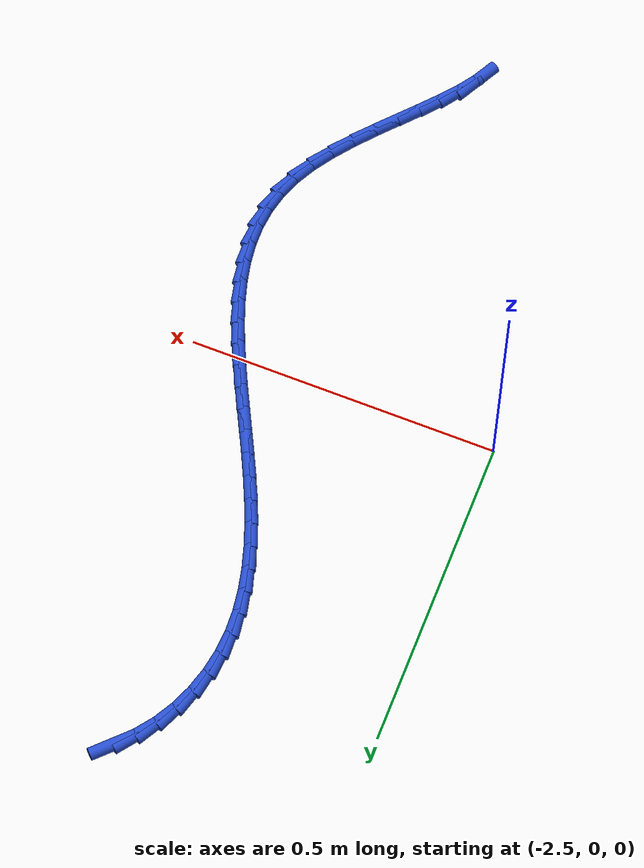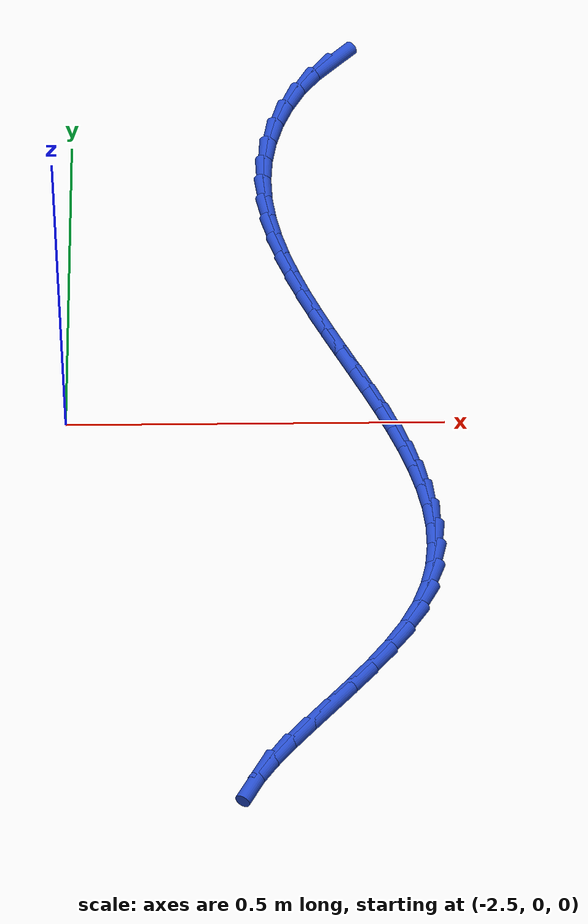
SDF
<sdf version="1.6">
 <world name="default">
  <model name="ground_plane">
   <static>1</static>
   <link name="link">
    <collision name="collision">
     <geometry><plane><normal>0 0 1</normal><size>100 100</size></plane></geometry>
     <surface><friction><ode><mu>100</mu><mu2>50</mu2></ode></friction></surface>
    </collision>
    <visual name="visual">
     <cast_shadows>0</cast_shadows>
     <geometry><plane><normal>0 0 1</normal><size>100 100</size></plane></geometry>
     <material>
      <script><uri>file://media/materials/scripts/gazebo.material</uri><name>Gazebo/WhiteGlow</name></script>
     </material>
    </visual>
   </link>
  </model>
  <model name="line">
   <link name="link_94">
    <pose>-2.1380356782683396 0.6542722284471584 0.01 0 1.57 0.7893928742878731</pose>
    <collision name="collision">
     <geometry><cylinder><radius>0.01</radius><length>0.08</length></cylinder></geometry>
    </collision>
    <visual name="visual">
     <material>
      <script><name>Gazebo/Blue</name><uri>file://media/materials/scripts/gazebo.material</uri></script>
     </material>
     <geometry><cylinder><radius>0.01</radius><length>0.08</length></cylinder></geometry>
    </visual>
   </link>
   <link name="link_95">
    <pose>-2.1633654362984296 0.6287392875590041 0.01 0 1.57 0.9290859651250767</pose>
    <collision name="collision">
     <geometry><cylinder><radius>0.01</radius><length>0.08</length></cylinder></geometry>
    </collision>
    <visual name="visual">
     <material>
      <script><name>Gazebo/Blue</name><uri>file://media/materials/scripts/gazebo.material</uri></script>
     </material>
     <geometry><cylinder><radius>0.01</radius><length>0.08</length></cylinder></geometry>
    </visual>
   </link>
   <link name="link_96">
    <pose>-2.185012794638447 0.5997682048682689 0.01 0 1.57 1.057145029015441</pose>
    <collision name="collision">
     <geometry><cylinder><radius>0.01</radius><length>0.08</length></cylinder></geometry>
    </collision>
    <visual name="visual">
     <material>
      <script><name>Gazebo/Blue</name><uri>file://media/materials/scripts/gazebo.material</uri></script>
     </material>
     <geometry><cylinder><radius>0.01</radius><length>0.08</length></cylinder></geometry>
    </visual>
   </link>
   <link name="link_97">
    <pose>-2.202900033851906 0.5680623639814033 0.01 0 1.57 1.176201525417892</pose>
    <collision name="collision">
     <geometry><cylinder><radius>0.01</radius><length>0.08</length></cylinder></geometry>
    </collision>
    <visual name="visual">
     <material>
      <script><name>Gazebo/Blue</name><uri>file://media/materials/scripts/gazebo.material</uri></script>
     </material>
     <geometry><cylinder><radius>0.01</radius><length>0.08</length></cylinder></geometry>
    </visual>
   </link>
   <link name="link_98">
    <pose>-2.2169494345023217 0.5343251485048576 0.01 0 1.57 1.2894616285602325</pose>
    <collision name="collision">
     <geometry><cylinder><radius>0.01</radius><length>0.08</length></cylinder></geometry>
    </collision>
    <visual name="visual">
     <material>
      <script><name>Gazebo/Blue</name><uri>file://media/materials/scripts/gazebo.material</uri></script>
     </material>
     <geometry><cylinder><radius>0.01</radius><length>0.08</length></cylinder></geometry>
    </visual>
   </link>
   <link name="link_99">
    <pose>-2.227083277153211 0.49925994204508195 0.01 0 1.57 1.400410815365416</pose>
    <collision name="collision">
     <geometry><cylinder><radius>0.01</radius><length>0.08</length></cylinder></geometry>
    </collision>
    <visual name="visual">
     <material>
      <script><name>Gazebo/Blue</name><uri>file://media/materials/scripts/gazebo.material</uri></script>
     </material>
     <geometry><cylinder><radius>0.01</radius><length>0.08</length></cylinder></geometry>
    </visual>
   </link>
   <link name="link_100">
    <pose>-2.233223842368088 0.4635701282085273 0.01 0 1.57 1.5114984601576926</pose>
    <collision name="collision">
     <geometry><cylinder><radius>0.01</radius><length>0.08</length></cylinder></geometry>
    </collision>
    <visual name="visual">
     <material>
      <script><name>Gazebo/Blue</name><uri>file://media/materials/scripts/gazebo.material</uri></script>
     </material>
     <geometry><cylinder><radius>0.01</radius><length>0.08</length></cylinder></geometry>
    </visual>
   </link>
   <link name="link_101">
    <pose>-2.23534227168722 0.42788679100978744 0.01 0 1.57 -1.5250771751783212</pose>
    <collision name="collision">
     <geometry><cylinder><radius>0.01</radius><length>0.08</length></cylinder></geometry>
    </collision>
    <visual name="visual">
     <material>
      <script><name>Gazebo/Blue</name><uri>file://media/materials/scripts/gazebo.material</uri></script>
     </material>
     <geometry><cylinder><radius>0.01</radius><length>0.08</length></cylinder></geometry>
    </visual>
   </link>
   <link name="link_102">
    <pose>-2.233718019130653 0.3923848044583742 0.01 0 1.57 -1.4310812716477506</pose>
    <collision name="collision">
     <geometry><cylinder><radius>0.01</radius><length>0.08</length></cylinder></geometry>
    </collision>
    <visual name="visual">
     <material>
      <script><name>Gazebo/Blue</name><uri>file://media/materials/scripts/gazebo.material</uri></script>
     </material>
     <geometry><cylinder><radius>0.01</radius><length>0.08</length></cylinder></geometry>
    </visual>
   </link>
   <link name="link_103">
    <pose>-2.228750468409671 0.3570615825884858 0.01 0 1.57 -1.3494000336183498</pose>
    <collision name="collision">
     <geometry><cylinder><radius>0.01</radius><length>0.08</length></cylinder></geometry>
    </collision>
    <visual name="visual">
     <material>
      <script><name>Gazebo/Blue</name><uri>file://media/materials/scripts/gazebo.material</uri></script>
     </material>
     <geometry><cylinder><radius>0.01</radius><length>0.08</length></cylinder></geometry>
    </visual>
   </link>
   <link name="link_104">
    <pose>-2.2208392717572054 0.3219141421028159 0.01 0 1.57 -1.280315685187533</pose>
    <collision name="collision">
     <geometry><cylinder><radius>0.01</radius><length>0.08</length></cylinder></geometry>
    </collision>
    <visual name="visual">
     <material>
      <script><name>Gazebo/Blue</name><uri>file://media/materials/scripts/gazebo.material</uri></script>
     </material>
     <geometry><cylinder><radius>0.01</radius><length>0.08</length></cylinder></geometry>
    </visual>
   </link>
   <link name="link_105">
    <pose>-2.2103840814061884 0.28693949970405697 0.01 0 1.57 -1.2234666578836626</pose>
    <collision name="collision">
     <geometry><cylinder><radius>0.01</radius><length>0.08</length></cylinder></geometry>
    </collision>
    <visual name="visual">
     <material>
      <script><name>Gazebo/Blue</name><uri>file://media/materials/scripts/gazebo.material</uri></script>
     </material>
     <geometry><cylinder><radius>0.01</radius><length>0.08</length></cylinder></geometry>
    </visual>
   </link>
   <link name="link_106">
    <pose>-2.1977845495895503 0.2521346720949025 0.01 0 1.57 -1.178178732306062</pose>
    <collision name="collision">
     <geometry><cylinder><radius>0.01</radius><length>0.08</length></cylinder></geometry>
    </collision>
    <visual name="visual">
     <material>
      <script><name>Gazebo/Blue</name><uri>file://media/materials/scripts/gazebo.material</uri></script>
     </material>
     <geometry><cylinder><radius>0.01</radius><length>0.08</length></cylinder></geometry>
    </visual>
   </link>
   <link name="link_107">
    <pose>-2.1834403285402235 0.21749667597804534 0.01 0 1.57 -1.143707578519611</pose>
    <collision name="collision">
     <geometry><cylinder><radius>0.01</radius><length>0.08</length></cylinder></geometry>
    </collision>
    <visual name="visual">
     <material>
      <script><name>Gazebo/Blue</name><uri>file://media/materials/scripts/gazebo.material</uri></script>
     </material>
     <geometry><cylinder><radius>0.01</radius><length>0.08</length></cylinder></geometry>
    </visual>
   </link>
   <link name="link_108">
    <pose>-2.1677510704911387 0.18302252805617794 0.01 0 1.57 -1.1193927996523476</pose>
    <collision name="collision">
     <geometry><cylinder><radius>0.01</radius><length>0.08</length></cylinder></geometry>
    </collision>
    <visual name="visual">
     <material>
      <script><name>Gazebo/Blue</name><uri>file://media/materials/scripts/gazebo.material</uri></script>
     </material>
     <geometry><cylinder><radius>0.01</radius><length>0.08</length></cylinder></geometry>
    </visual>
   </link>
   <link name="link_109">
    <pose>-2.1511164276752286 0.14870924503199434 0.01 0 1.57 -1.1047467286624997</pose>
    <collision name="collision">
     <geometry><cylinder><radius>0.01</radius><length>0.08</length></cylinder></geometry>
    </collision>
    <visual name="visual">
     <material>
      <script><name>Gazebo/Blue</name><uri>file://media/materials/scripts/gazebo.material</uri></script>
     </material>
     <geometry><cylinder><radius>0.01</radius><length>0.08</length></cylinder></geometry>
    </visual>
   </link>
   <link name="link_110">
    <pose>-2.133936052325424 0.11455384360818649 0.01 0 1.57 -1.0995029323289194</pose>
    <collision name="collision">
     <geometry><cylinder><radius>0.01</radius><length>0.08</length></cylinder></geometry>
    </collision>
    <visual name="visual">
     <material>
      <script><name>Gazebo/Blue</name><uri>file://media/materials/scripts/gazebo.material</uri></script>
     </material>
     <geometry><cylinder><radius>0.01</radius><length>0.08</length></cylinder></geometry>
    </visual>
   </link>
   <link name="link_111">
    <pose>-2.1166095966746554 0.0805533404874484 0.01 0 1.57 -1.1036430212620005</pose>
    <collision name="collision">
     <geometry><cylinder><radius>0.01</radius><length>0.08</length></cylinder></geometry>
    </collision>
    <visual name="visual">
     <material>
      <script><name>Gazebo/Blue</name><uri>file://media/materials/scripts/gazebo.material</uri></script>
     </material>
     <geometry><cylinder><radius>0.01</radius><length>0.08</length></cylinder></geometry>
    </visual>
   </link>
   <link name="link_112">
    <pose>-2.0995367129558553 0.04670475237247211 0.01 0 1.57 -1.1174125884057826</pose>
    <collision name="collision">
     <geometry><cylinder><radius>0.01</radius><length>0.08</length></cylinder></geometry>
    </collision>
    <visual name="visual">
     <material>
      <script><name>Gazebo/Blue</name><uri>file://media/materials/scripts/gazebo.material</uri></script>
     </material>
     <geometry><cylinder><radius>0.01</radius><length>0.08</length></cylinder></geometry>
    </visual>
   </link>
   <link name="link_113">
    <pose>-2.0831170534019554 0.013005095965951605 0.01 0 1.57 -1.141329629364414</pose>
    <collision name="collision">
     <geometry><cylinder><radius>0.01</radius><length>0.08</length></cylinder></geometry>
    </collision>
    <visual name="visual">
     <material>
      <script><name>Gazebo/Blue</name><uri>file://media/materials/scripts/gazebo.material</uri></script>
     </material>
     <geometry><cylinder><radius>0.01</radius><length>0.08</length></cylinder></geometry>
    </visual>
   </link>
   <link name="link_114">
    <pose>-2.0677502702458868 -0.02054861202942103 0.01 0 1.57 -1.1761808926854396</pose>
    <collision name="collision">
     <geometry><cylinder><radius>0.01</radius><length>0.08</length></cylinder></geometry>
    </collision>
    <visual name="visual">
     <material>
      <script><name>Gazebo/Blue</name><uri>file://media/materials/scripts/gazebo.material</uri></script>
     </material>
     <geometry><cylinder><radius>0.01</radius><length>0.08</length></cylinder></geometry>
    </visual>
   </link>
   <link name="link_115">
    <pose>-2.0538360157205804 -0.053959354910951884 0.01 0 1.57 -1.2229915426512252</pose>
    <collision name="collision">
     <geometry><cylinder><radius>0.01</radius><length>0.08</length></cylinder></geometry>
    </collision>
    <visual name="visual">
     <material>
      <script><name>Gazebo/Blue</name><uri>file://media/materials/scripts/gazebo.material</uri></script>
     </material>
     <geometry><cylinder><radius>0.01</radius><length>0.08</length></cylinder></geometry>
    </visual>
   </link>
   <link name="link_116">
    <pose>-2.0417739420589682 -0.08723011597594846 0.01 0 1.57 -1.282939838124255</pose>
    <collision name="collision">
     <geometry><cylinder><radius>0.01</radius><length>0.08</length></cylinder></geometry>
    </collision>
    <visual name="visual">
     <material>
      <script><name>Gazebo/Blue</name><uri>file://media/materials/scripts/gazebo.material</uri></script>
     </material>
     <geometry><cylinder><radius>0.01</radius><length>0.08</length></cylinder></geometry>
    </visual>
   </link>
   <link name="link_117">
    <pose>-2.0319637014939818 -0.12036387852171844 0.01 0 1.57 -1.357172698392607</pose>
    <collision name="collision">
     <geometry><cylinder><radius>0.01</radius><length>0.08</length></cylinder></geometry>
    </collision>
    <visual name="visual">
     <material>
      <script><name>Gazebo/Blue</name><uri>file://media/materials/scripts/gazebo.material</uri></script>
     </material>
     <geometry><cylinder><radius>0.01</radius><length>0.08</length></cylinder></geometry>
    </visual>
   </link>
   <link name="link_118">
    <pose>-2.024804946258553 -0.15336362584556731 0.01 0 1.57 -1.4464704421601966</pose>
    <collision name="collision">
     <geometry><cylinder><radius>0.01</radius><length>0.08</length></cylinder></geometry>
    </collision>
    <visual name="visual">
     <material>
      <script><name>Gazebo/Blue</name><uri>file://media/materials/scripts/gazebo.material</uri></script>
     </material>
     <geometry><cylinder><radius>0.01</radius><length>0.08</length></cylinder></geometry>
    </visual>
   </link>
   <link name="link_119">
    <pose>-2.0206973285856122 -0.18623234124480276 0.01 0 1.57 -1.5507374872292767</pose>
    <collision name="collision">
     <geometry><cylinder><radius>0.01</radius><length>0.08</length></cylinder></geometry>
    </collision>
    <visual name="visual">
     <material>
      <script><name>Gazebo/Blue</name><uri>file://media/materials/scripts/gazebo.material</uri></script>
     </material>
     <geometry><cylinder><radius>0.01</radius><length>0.08</length></cylinder></geometry>
    </visual>
   </link>
   <link name="link_120">
    <pose>-2.0200405007080917 -0.2189730080167318 0.01 0 1.57 1.4731907067492922</pose>
    <collision name="collision">
     <geometry><cylinder><radius>0.01</radius><length>0.08</length></cylinder></geometry>
    </collision>
    <visual name="visual">
     <material>
      <script><name>Gazebo/Blue</name><uri>file://media/materials/scripts/gazebo.material</uri></script>
     </material>
     <geometry><cylinder><radius>0.01</radius><length>0.08</length></cylinder></geometry>
    </visual>
   </link>
   <link name="link_121">
    <pose>-2.0232341148589224 -0.25158860945866146 0.01 0 1.57 1.3455991724167278</pose>
    <collision name="collision">
     <geometry><cylinder><radius>0.01</radius><length>0.08</length></cylinder></geometry>
    </collision>
    <visual name="visual">
     <material>
      <script><name>Gazebo/Blue</name><uri>file://media/materials/scripts/gazebo.material</uri></script>
     </material>
     <geometry><cylinder><radius>0.01</radius><length>0.08</length></cylinder></geometry>
    </visual>
   </link>
   <link name="link_122">
    <pose>-2.030677823271036 -0.2840821288678995 0.01 0 1.57 1.2132977643543879</pose>
    <collision name="collision">
     <geometry><cylinder><radius>0.01</radius><length>0.08</length></cylinder></geometry>
    </collision>
    <visual name="visual">
     <material>
      <script><name>Gazebo/Blue</name><uri>file://media/materials/scripts/gazebo.material</uri></script>
     </material>
     <geometry><cylinder><radius>0.01</radius><length>0.08</length></cylinder></geometry>
    </visual>
   </link>
   <link name="link_123">
    <pose>-2.0427712781773657 -0.3164565495417514 0.01 0 1.57 1.0849926129511718</pose>
    <collision name="collision">
     <geometry><cylinder><radius>0.01</radius><length>0.08</length></cylinder></geometry>
    </collision>
    <visual name="visual">
     <material>
      <script><name>Gazebo/Blue</name><uri>file://media/materials/scripts/gazebo.material</uri></script>
     </material>
     <geometry><cylinder><radius>0.01</radius><length>0.08</length></cylinder></geometry>
    </visual>
   </link>
   <link name="link_124">
    <pose>-2.0597977467369417 -0.3487030376930849 0.01 0 1.57 0.9842099255529291</pose>
    <collision name="collision">
     <geometry><cylinder><radius>0.01</radius><length>0.08</length></cylinder></geometry>
    </collision>
    <visual name="visual">
     <material>
      <script><name>Gazebo/Blue</name><uri>file://media/materials/scripts/gazebo.material</uri></script>
     </material>
     <geometry><cylinder><radius>0.01</radius><length>0.08</length></cylinder></geometry>
    </visual>
   </link>
   <link name="link_125">
    <pose>-2.081073339692563 -0.3807145599233018 0.01 0 1.57 0.914348530581524</pose>
    <collision name="collision">
     <geometry><cylinder><radius>0.01</radius><length>0.08</length></cylinder></geometry>
    </collision>
    <visual name="visual">
     <material>
      <script><name>Gazebo/Blue</name><uri>file://media/materials/scripts/gazebo.material</uri></script>
     </material>
     <geometry><cylinder><radius>0.01</radius><length>0.08</length></cylinder></geometry>
    </visual>
   </link>
   <link name="link_126">
    <pose>-2.1054349634135057 -0.41233542712258464 0.01 0 1.57 0.8687720691359443</pose>
    <collision name="collision">
     <geometry><cylinder><radius>0.01</radius><length>0.08</length></cylinder></geometry>
    </collision>
    <visual name="visual">
     <material>
      <script><name>Gazebo/Blue</name><uri>file://media/materials/scripts/gazebo.material</uri></script>
     </material>
     <geometry><cylinder><radius>0.01</radius><length>0.08</length></cylinder></geometry>
    </visual>
   </link>
   <link name="link_127">
    <pose>-2.131716091362591 -0.4434096016231411 0.01 0 1.57 0.8434689640883731</pose>
    <collision name="collision">
     <geometry><cylinder><radius>0.01</radius><length>0.08</length></cylinder></geometry>
    </collision>
    <visual name="visual">
     <material>
      <script><name>Gazebo/Blue</name><uri>file://media/materials/scripts/gazebo.material</uri></script>
     </material>
     <geometry><cylinder><radius>0.01</radius><length>0.08</length></cylinder></geometry>
    </visual>
   </link>
   <link name="link_128">
    <pose>-2.158750197002643 -0.4737810457571811 0.01 0 1.57 0.8368750537393194</pose>
    <collision name="collision">
     <geometry><cylinder><radius>0.01</radius><length>0.08</length></cylinder></geometry>
    </collision>
    <visual name="visual">
     <material>
      <script><name>Gazebo/Blue</name><uri>file://media/materials/scripts/gazebo.material</uri></script>
     </material>
     <geometry><cylinder><radius>0.01</radius><length>0.08</length></cylinder></geometry>
    </visual>
   </link>
   <link name="link_129">
    <pose>-2.1853707537964855 -0.5032937218569142 0.01 0 1.57 0.8498864181356186</pose>
    <collision name="collision">
     <geometry><cylinder><radius>0.01</radius><length>0.08</length></cylinder></geometry>
    </collision>
    <visual name="visual">
     <material>
      <script><name>Gazebo/Blue</name><uri>file://media/materials/scripts/gazebo.material</uri></script>
     </material>
     <geometry><cylinder><radius>0.01</radius><length>0.08</length></cylinder></geometry>
    </visual>
   </link>
   <link name="link_130">
    <pose>-2.2104112352069407 -0.5317915922545492 0.01 0 1.57 0.8864844307001786</pose>
    <collision name="collision">
     <geometry><cylinder><radius>0.01</radius><length>0.08</length></cylinder></geometry>
    </collision>
    <visual name="visual">
     <material>
      <script><name>Gazebo/Blue</name><uri>file://media/materials/scripts/gazebo.material</uri></script>
     </material>
     <geometry><cylinder><radius>0.01</radius><length>0.08</length></cylinder></geometry>
    </visual>
   </link>
   <link name="link_131">
    <pose>-2.2327051146968317 -0.5591186192822961 0.01 0 1.57 0.9554224846661501</pose>
    <collision name="collision">
     <geometry><cylinder><radius>0.01</radius><length>0.08</length></cylinder></geometry>
    </collision>
    <visual name="visual">
     <material>
      <script><name>Gazebo/Blue</name><uri>file://media/materials/scripts/gazebo.material</uri></script>
     </material>
     <geometry><cylinder><radius>0.01</radius><length>0.08</length></cylinder></geometry>
    </visual>
   </link>
   <link name="link_132">
    <pose>-2.251085865728981 -0.5851187652723625 0.01 0 1.57 1.073713739104807</pose>
    <collision name="collision">
     <geometry><cylinder><radius>0.01</radius><length>0.08</length></cylinder></geometry>
    </collision>
    <visual name="visual">
     <material>
      <script><name>Gazebo/Blue</name><uri>file://media/materials/scripts/gazebo.material</uri></script>
     </material>
     <geometry><cylinder><radius>0.01</radius><length>0.08</length></cylinder></geometry>
    </visual>
   </link>
  </model>
 </world>
</sdf>
